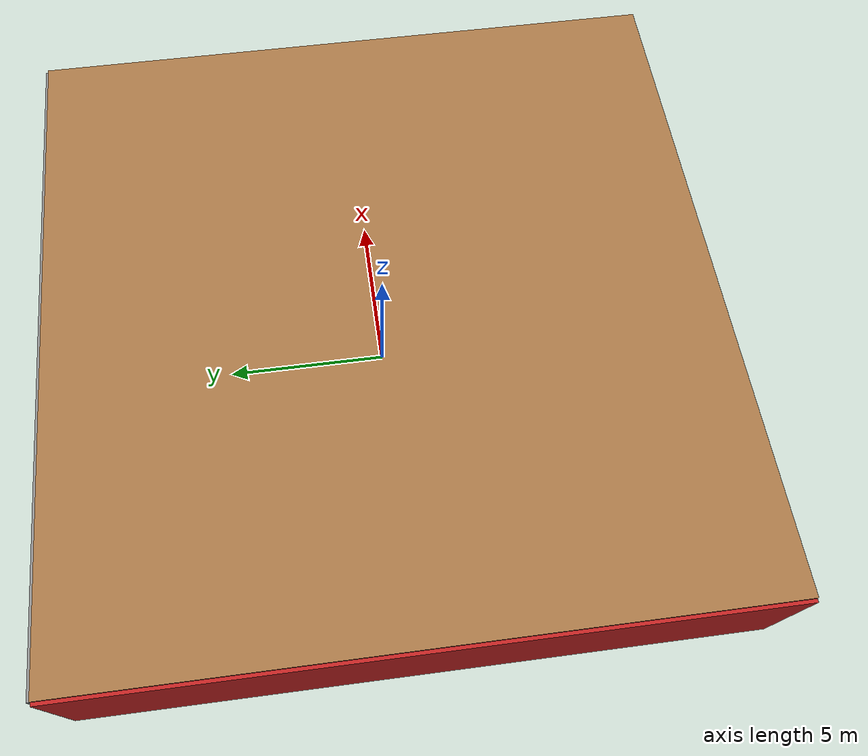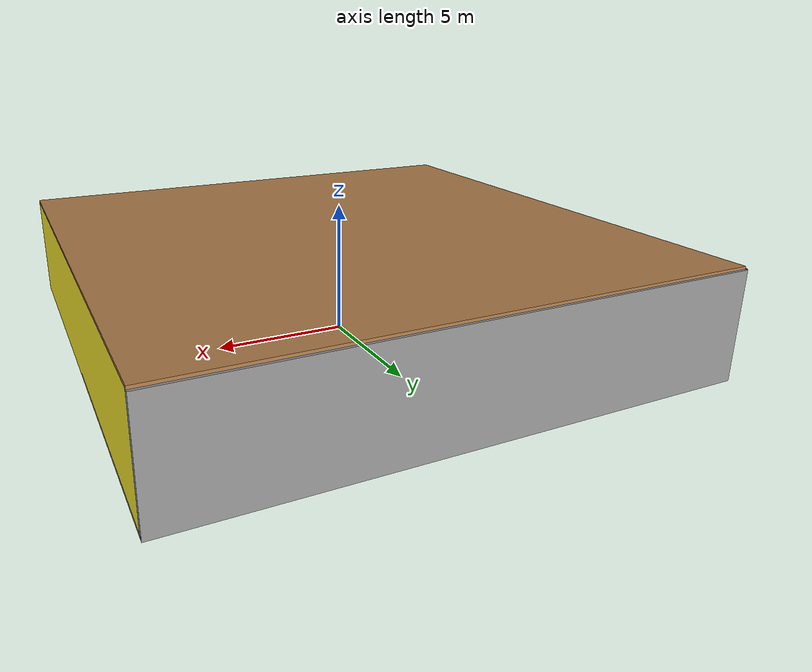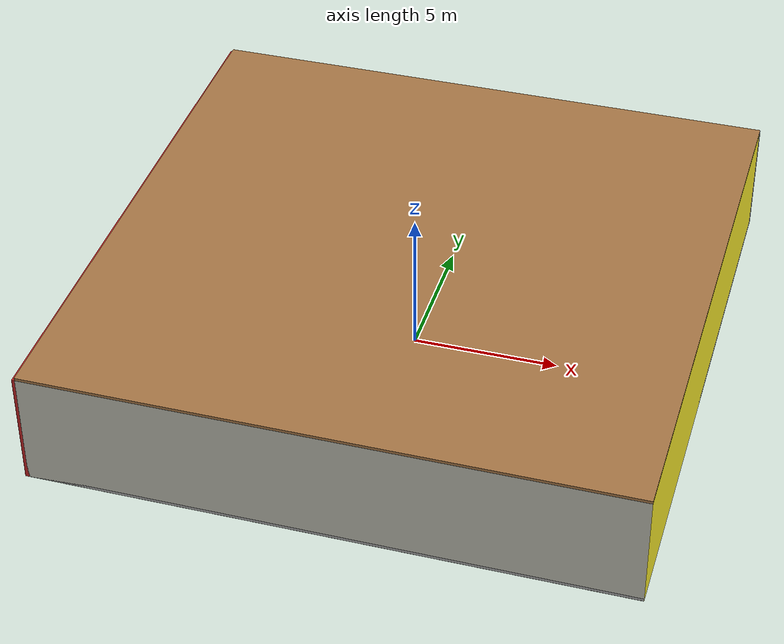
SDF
<sdf version="1.4">
 <world name="default">
  <physics type="ode">
   <max_step_size>0.001</max_step_size>
   <real_time_factor>1</real_time_factor>
   <real_time_update_rate>1000</real_time_update_rate>
   <gravity>0 0 -9.8</gravity>
  </physics>
  <scene><ambient>0.4 0.4 0.4 1</ambient><background>0.7 0.7 0.7 1</background><shadows>1</shadows></scene>
  <model name="Surrounding">
   <static>1</static>
   <link name="Ceiling">
    <collision name="Ceiling_Collision"><geometry><box><size>20 20 0.1</size></box></geometry></collision>
    <visual name="Ceiling_Visual">
     <geometry><box><size>20 20 0.1</size></box></geometry>
     <material>
      <script><uri>file://media/materials/scripts/gazebo.material</uri><name>Gazebo/WoodFloor</name></script>
     </material>
    </visual>
    <pose>0 0 4.05 0 0 0</pose>
   </link>
   <link name="Wall_South">
    <collision name="Wall_South_Collision">
     <geometry><box><size>20 0 4</size></box></geometry>
     <pose>0 0 2 0 -0 0</pose>
    </collision>
    <visual name="Wall_South_Visual">
     <pose>0 0 2 0 -0 0</pose>
     <geometry><box><size>20 0 4</size></box></geometry>
     <material>
      <script><uri>file://media/materials/scripts/gazebo.material</uri><name>Gazebo/PaintedWall</name></script>
     </material>
    </visual>
    <velocity_decay><linear>0</linear><angular>0</angular></velocity_decay>
    <pose>0 -10 0 0 -0 0</pose>
   </link>
   <link name="Wall_East">
    <collision name="Wall_21_Collision">
     <geometry><box><size>20 0 4</size></box></geometry>
     <pose>0 0 2 0 -0 0</pose>
    </collision>
    <visual name="Wall_21_Visual">
     <pose>0 0 2 0 -0 0</pose>
     <geometry><box><size>20 0 4</size></box></geometry>
     <material>
      <script><uri>file://media/materials/scripts/gazebo.material</uri><name>Gazebo/Yellow</name></script>
     </material>
    </visual>
    <velocity_decay><linear>0</linear><angular>0</angular></velocity_decay>
    <pose>10 0 0 0 -0 1.5708</pose>
   </link>
   <link name="Wall_North">
    <collision name="Wall_22_Collision">
     <geometry><box><size>20 0.2 4</size></box></geometry>
     <pose>0 0 2 0 -0 0</pose>
    </collision>
    <visual name="Wall_22_Visual">
     <pose>0 0 2 0 -0 0</pose>
     <geometry><box><size>20 0.2 4</size></box></geometry>
     <material>
      <script><uri>file://media/materials/scripts/gazebo.material</uri><name>Gazebo/Grey</name></script>
     </material>
    </visual>
    <velocity_decay><linear>0</linear><angular>0</angular></velocity_decay>
    <pose>0 10 0 0 -0 0</pose>
   </link>
   <link name="Wall_West">
    <collision name="Wall_23_Collision">
     <geometry><box><size>20 0.2 4</size></box></geometry>
     <pose>0 0 2 0 -0 0</pose>
    </collision>
    <visual name="Wall_23_Visual">
     <pose>0 0 2 0 -0 0</pose>
     <geometry><box><size>20 0.2 4</size></box></geometry>
     <material>
      <script><uri>file://media/materials/scripts/gazebo.material</uri><name>Gazebo/RedBright</name></script>
     </material>
    </visual>
    <velocity_decay><linear>0</linear><angular>0</angular></velocity_decay>
    <pose>-10 0 0 0 0 -1.5708</pose>
   </link>
   <link name="Ground_link">
    <collision name="collision">
     <pose>0 0 .05 0 -0 0</pose>
     <geometry><box><size>20 20 0.1</size></box></geometry>
    </collision>
    <visual name="visual">
     <pose>0 0 .05 0 -0 0</pose>
     <geometry><box><size>20 20 0.1</size></box></geometry>
     <material>
      <script><uri>file://media/materials/scripts/gazebo.material</uri><name>Gazebo/Pioneer2Body</name></script>
     </material>
    </visual>
   </link>
   <static>1</static>
  </model>
  <spherical_coordinates>
   <surface_model>EARTH_WGS84</surface_model>
   <latitude_deg>0</latitude_deg>
   <longitude_deg>0</longitude_deg>
   <elevation>0</elevation>
   <heading_deg>0</heading_deg>
  </spherical_coordinates>
  <light name="lightball_0" type="diffuse">
   <diffuse>0.8 0.8 0.8 1</diffuse>
   <specular>0.2 0.2 0.2 1</specular>
   <attenuation>
    <range>100</range>
    <constant>0.7</constant>
    <linear>0.01</linear>
    <quadratic>0.001</quadratic>
   </attenuation>
   <direction>-0.5 0.1 -0.9</direction>
   <pose>3.24029055417 -2.11383931432 1.48880129799 0 0 0</pose>
  </light>
  <light name="lightball_1" type="diffuse">
   <diffuse>0.8 0.8 0.8 1</diffuse>
   <specular>0.2 0.2 0.2 1</specular>
   <attenuation>
    <range>100</range>
    <constant>0.7</constant>
    <linear>0.01</linear>
    <quadratic>0.001</quadratic>
   </attenuation>
   <direction>-0.5 0.1 -0.9</direction>
   <pose>-8.57671763561 -1.00958349385 1.72113978171 0 0 0</pose>
  </light>
  <light name="lightball_2" type="diffuse">
   <diffuse>0.8 0.8 0.8 1</diffuse>
   <specular>0.2 0.2 0.2 1</specular>
   <attenuation>
    <range>100</range>
    <constant>0.7</constant>
    <linear>0.01</linear>
    <quadratic>0.001</quadratic>
   </attenuation>
   <direction>-0.5 0.1 -0.9</direction>
   <pose>-9.87852117152 4.44962566288 1.43067381758 0 0 0</pose>
  </light>
  <include>
   <uri>model://construction_cone</uri>
   <pose>-4.05327324982 -2.04080530346 0 0 0 1.55328619582</pose>
  </include>
  <include><uri>model://cabinet</uri><pose>-2.26461062872 -4.71749855623 0 0 0 0.0581890627553</pose></include>
  <include>
   <uri>model://construction_cone</uri>
   <pose>-0.889241626082 7.70215858011 0 0 0 2.14957406072</pose>
  </include>
  <include>
   <uri>model://construction_cone</uri>
   <pose>1.94343410137 -1.37841054183 0 0 0 0.932404659333</pose>
  </include>
  <include><uri>model://cabinet</uri><pose>8.19754985771 -7.15626070626 0 0 0 0.472914432074</pose></include>
 </world>
</sdf>

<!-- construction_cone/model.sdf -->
<sdf version="1.5">
  <model name="Construction Cone">
    <link name="link">
      <collision name="collision">
        <geometry>
          <mesh>
            <scale>10 10 10</scale>
            <uri>file://isr-testbed/construction_cone/meshes/construction_cone.dae</uri>
          </mesh>
        </geometry>
      </collision>
      <visual name="visual">
        <geometry>
          <mesh>
            <scale>10 10 10</scale>
            <uri>file://isr-testbed/construction_cone/meshes/construction_cone.dae</uri>
          </mesh>
        </geometry>
      </visual>
    </link>
  </model>
</sdf>

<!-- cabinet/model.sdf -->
<sdf version="1.5">
  <model name="cabinet">
    <static>true</static>
    <link name="cabinet_bottom_plate">
      <inertial>
        <pose>0 0 -1 0 0 0</pose>
        <inertia>
          <ixx>2.050000</ixx>
          <ixy>0</ixy>
          <ixz>0</ixz>
          <iyy>2.050000</iyy>
          <iyz>0</iyz>
          <izz>2.050000</izz>
        </inertia>
        <mass>25.000000</mass>
      </inertial>
      <collision name="cabinet_bottom_plate_geom">
        <pose>0 0 0.010000 0 0 0</pose>
        <geometry>
          <box>
            <size>0.450000 0.450000 0.020000</size>
          </box>
        </geometry>
      </collision>
      <visual name="cabinet_bottom_plate_geom_visual">
        <pose>0 0 0.010000 0 0 0</pose>
        <geometry>
          <box>
            <size>0.450000 0.450000 0.020000</size>
          </box>
        </geometry>
        <material>
          <script>
            <uri>model://media/materials/scripts/gazebo.material</uri>
            <name>Gazebo/Wood</name>
          </script>
        </material>
      </visual>
      <collision name="cabinet_bottom_plate_geom_cabinet_back_plate">
        <pose>0.235000 0 0.510000 0 0 0</pose>
        <geometry>
          <box>
            <size>0.020000 0.450000 1.020000</size>
          </box>
        </geometry>
      </collision>
      <visual name="cabinet_bottom_plate_geom_cabinet_back_plate_visual">
        <pose>0.235000 0 0.510000 0 0 0</pose>
        <geometry>
          <box>
            <size>0.020000 0.450000 1.020000</size>
          </box>
        </geometry>
        <material>
          <script>
            <uri>model://media/materials/scripts/gazebo.material</uri>
            <name>Gazebo/Wood</name>
          </script>
        </material>
      </visual>
      <collision name="cabinet_bottom_plate_geom_cabinet_left_plate">
        <pose>0 0.235000 0.510000 0 0 0</pose>
        <geometry>
          <box>
            <size>0.450000 0.020000 1.020000</size>
          </box>
        </geometry>
      </collision>
      <visual name="cabinet_bottom_plate_geom_cabinet_left_plate_visual">
        <pose>0 0.235000 0.510000 0 0 0</pose>
        <geometry>
          <box>
            <size>0.450000 0.020000 1.020000</size>
          </box>
        </geometry>
        <material>
          <script>
            <uri>model://media/materials/scripts/gazebo.material</uri>
            <name>Gazebo/Wood</name>
          </script>
        </material>
      </visual>
      <collision name="cabinet_bottom_plate_geom_cabinet_middle_plate">
        <pose>0 0 0.510000 0 0 0</pose>
        <geometry>
          <box>
            <size>0.450000 0.450000 0.020000</size>
          </box>
        </geometry>
      </collision>
      <visual name="cabinet_bottom_plate_geom_cabinet_middle_plate_visual">
        <pose>0 0 0.510000 0 0 0</pose>
        <geometry>
          <box>
            <size>0.450000 0.450000 0.020000</size>
          </box>
        </geometry>
        <material>
          <script>
            <uri>model://media/materials/scripts/gazebo.material</uri>
            <name>Gazebo/Wood</name>
          </script>
        </material>
      </visual>
      <collision name="cabinet_bottom_plate_geom_cabinet_right_plate">
        <pose>0 -0.235000 0.510000 0 0 0</pose>
        <geometry>
          <box>
            <size>0.450000 0.020000 1.020000</size>
          </box>
        </geometry>
      </collision>
      <visual name="cabinet_bottom_plate_geom_cabinet_right_plate_visual">
        <pose>0 -0.235000 0.510000 0 0 0</pose>
        <geometry>
          <box>
            <size>0.450000 0.020000 1.020000</size>
          </box>
        </geometry>
        <material>
          <script>
            <uri>model://media/materials/scripts/gazebo.material</uri>
            <name>Gazebo/Wood</name>
          </script>
        </material>
      </visual>
      <collision name="cabinet_bottom_plate_geom_cabinet_top_plate">
        <pose>0 0 1.010000 0 0 0</pose>
        <geometry>
          <box>
            <size>0.450000 0.450000 0.020000</size>
          </box>
        </geometry>
      </collision>
      <visual name="cabinet_bottom_plate_geom_cabinet_top_plate_visual">
        <pose>0 0 1.010000 0 0 0</pose>
        <geometry>
          <box>
            <size>0.450000 0.450000 0.020000</size>
          </box>
        </geometry>
        <material>
          <script>
            <uri>model://media/materials/scripts/gazebo.material</uri>
            <name>Gazebo/Wood</name>
          </script>
        </material>
      </visual>
    </link>
  </model>
</sdf>
